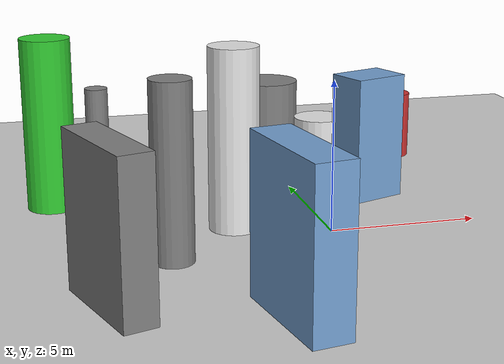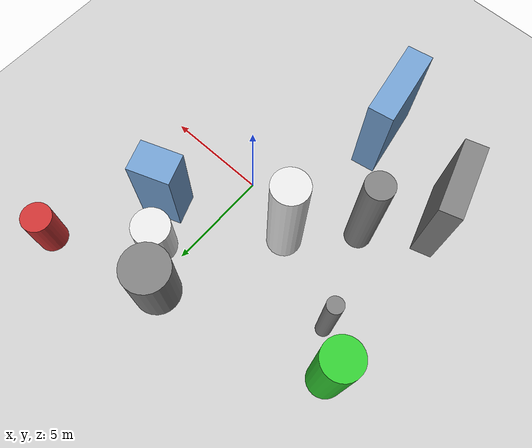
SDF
<?xml version='1.0'?>
<sdf version='1.6'>
  <world name='default'>
    <!-- Sun light -->
    <light name='sun' type='directional'>
      <cast_shadows>1</cast_shadows>
      <pose>0 0 10 0 0 0</pose>
      <diffuse>0.8 0.8 0.8 1</diffuse>
      <specular>0.2 0.2 0.2 1</specular>
      <attenuation>
        <range>1000</range>
        <constant>0.9</constant>
        <linear>0.01</linear>
        <quadratic>0.001</quadratic>
      </attenuation>
      <direction>-0.5 0.1 -0.9</direction>
    </light>

    <!-- Ground plane -->
    <model name='ground_plane'>
      <static>1</static>
      <link name='link'>
        <collision name='collision'>
          <geometry>
            <plane>
              <normal>0 0 1</normal>
              <size>100 100</size>
            </plane>
          </geometry>
          <surface>
            <contact>
              <collide_bitmask>65535</collide_bitmask>
              <ode/>
            </contact>
            <friction>
              <ode>
                <mu>100</mu>
                <mu2>50</mu2>
              </ode>
              <torsional><ode/></torsional>
            </friction>
            <bounce/>
          </surface>
          <max_contacts>10</max_contacts>
        </collision>
        <visual name='visual'>
          <cast_shadows>0</cast_shadows>
          <geometry>
            <plane>
              <normal>0 0 1</normal>
              <size>100 100</size>
            </plane>
          </geometry>
          <material>
            <script>
              <uri>file://media/materials/scripts/gazebo.material</uri>
              <n>Gazebo/Grey</n>
            </script>
          </material>
        </visual>
      </link>
    </model>

    <!-- Environment -->
    <magnetic_field>6e-06 2.3e-05 -4.2e-05</magnetic_field>
    <atmosphere type='adiabatic'/>
    <physics name='default_physics' default='0' type='ode'>
      <gravity>0 0 -9.8</gravity>
      <max_step_size>0.004</max_step_size>
      <real_time_factor>1</real_time_factor>
      <real_time_update_rate>250</real_time_update_rate>
    </physics>
    <scene>
      <ambient>0.4 0.4 0.4 1</ambient>
      <background>0.7 0.7 0.7 1</background>
      <shadows>1</shadows>
    </scene>
    <wind/>
    <spherical_coordinates>
      <surface_model>EARTH_WGS84</surface_model>
      <latitude_deg>0</latitude_deg>
      <longitude_deg>0</longitude_deg>
      <elevation>0</elevation>
      <heading_deg>0</heading_deg>
    </spherical_coordinates>

    <!-- ============ OBSTACLES (10) ============ -->
    <model name='obs_00'>
      <static>1</static>
      <link name='link'>
        <visual name='visual'>
          <geometry>
            <cylinder>
              <radius>1.1314</radius>
              <length>3.6334</length>
            </cylinder>
          </geometry>
          <material>
            <script>
              <n>Gazebo/Grey</n>
              <uri>file://media/materials/scripts/gazebo.material</uri>
            </script>
            <ambient>0.5 0.5 0.5 1</ambient>
          </material>
        </visual>
        <collision name='collision'>
          <geometry>
            <cylinder>
              <radius>1.1314</radius>
              <length>3.6334</length>
            </cylinder>
          </geometry>
          <max_contacts>10</max_contacts>
          <surface>
            <contact><ode/></contact>
            <bounce/>
            <friction>
              <ode><mu>1</mu><mu2>1</mu2></ode>
              <torsional><ode/></torsional>
            </friction>
          </surface>
        </collision>
      </link>
      <pose>-0.3562 6.9455 1.8167 0 0 0.2883</pose>
    </model>

    <model name='obs_01'>
      <static>1</static>
      <link name='link'>
        <visual name='visual'>
          <geometry>
            <cylinder>
              <radius>0.8346</radius>
              <length>6.0512</length>
            </cylinder>
          </geometry>
          <material>
            <script>
              <n>Gazebo/White</n>
              <uri>file://media/materials/scripts/gazebo.material</uri>
            </script>
            <ambient>0.9 0.9 0.9 1</ambient>
          </material>
        </visual>
        <collision name='collision'>
          <geometry>
            <cylinder>
              <radius>0.8346</radius>
              <length>6.0512</length>
            </cylinder>
          </geometry>
          <max_contacts>10</max_contacts>
          <surface>
            <contact><ode/></contact>
            <bounce/>
            <friction>
              <ode><mu>1</mu><mu2>1</mu2></ode>
              <torsional><ode/></torsional>
            </friction>
          </surface>
        </collision>
      </link>
      <pose>-2.9977 1.1253 3.0256 0 0 1.0710</pose>
    </model>

    <model name='obs_02'>
      <static>1</static>
      <link name='link'>
        <visual name='visual'>
          <geometry>
            <box>
              <size>3.5917 1.0445 4.7722</size>
            </box>
          </geometry>
          <material>
            <script>
              <n>Gazebo/Grey</n>
              <uri>file://media/materials/scripts/gazebo.material</uri>
            </script>
            <ambient>0.5 0.5 0.5 1</ambient>
          </material>
        </visual>
        <collision name='collision'>
          <geometry>
            <box>
              <size>3.5917 1.0445 4.7722</size>
            </box>
          </geometry>
          <max_contacts>10</max_contacts>
          <surface>
            <contact><ode/></contact>
            <bounce/>
            <friction>
              <ode><mu>1</mu><mu2>1</mu2></ode>
              <torsional><ode/></torsional>
            </friction>
          </surface>
        </collision>
      </link>
      <pose>-7.7023 -4.4286 2.3861 0 0 1.8731</pose>
    </model>

    <model name='obs_03'>
      <static>1</static>
      <link name='link'>
        <visual name='visual'>
          <geometry>
            <cylinder>
              <radius>0.6534</radius>
              <length>5.6336</length>
            </cylinder>
          </geometry>
          <material>
            <script>
              <n>Gazebo/Grey</n>
              <uri>file://media/materials/scripts/gazebo.material</uri>
            </script>
            <ambient>0.5 0.5 0.5 1</ambient>
          </material>
        </visual>
        <collision name='collision'>
          <geometry>
            <cylinder>
              <radius>0.6534</radius>
              <length>5.6336</length>
            </cylinder>
          </geometry>
          <max_contacts>10</max_contacts>
          <surface>
            <contact><ode/></contact>
            <bounce/>
            <friction>
              <ode><mu>1</mu><mu2>1</mu2></ode>
              <torsional><ode/></torsional>
            </friction>
          </surface>
        </collision>
      </link>
      <pose>-5.4768 -1.4178 2.8168 0 0 2.1173</pose>
    </model>

    <model name='obs_04'>
      <static>1</static>
      <link name='link'>
        <visual name='visual'>
          <geometry>
            <cylinder>
              <radius>0.9162</radius>
              <length>2.5090</length>
            </cylinder>
          </geometry>
          <material>
            <script>
              <n>Gazebo/White</n>
              <uri>file://media/materials/scripts/gazebo.material</uri>
            </script>
            <ambient>0.9 0.9 0.9 1</ambient>
          </material>
        </visual>
        <collision name='collision'>
          <geometry>
            <cylinder>
              <radius>0.9162</radius>
              <length>2.5090</length>
            </cylinder>
          </geometry>
          <max_contacts>10</max_contacts>
          <surface>
            <contact><ode/></contact>
            <bounce/>
            <friction>
              <ode><mu>1</mu><mu2>1</mu2></ode>
              <torsional><ode/></torsional>
            </friction>
          </surface>
        </collision>
      </link>
      <pose>1.2193 5.3487 1.2545 0 0 1.9072</pose>
    </model>

    <model name='obs_05'>
      <static>1</static>
      <link name='link'>
        <visual name='visual'>
          <geometry>
            <box>
              <size>2.0047 1.4914 4.3924</size>
            </box>
          </geometry>
          <material>
            <script>
              <n>Gazebo/Blue</n>
              <uri>file://media/materials/scripts/gazebo.material</uri>
            </script>
            <ambient>0.447 0.624 0.812 1</ambient>
          </material>
        </visual>
        <collision name='collision'>
          <geometry>
            <box>
              <size>2.0047 1.4914 4.3924</size>
            </box>
          </geometry>
          <max_contacts>10</max_contacts>
          <surface>
            <contact><ode/></contact>
            <bounce/>
            <friction>
              <ode><mu>1</mu><mu2>1</mu2></ode>
              <torsional><ode/></torsional>
            </friction>
          </surface>
        </collision>
      </link>
      <pose>2.4345 3.4995 2.1962 0 0 0.3576</pose>
    </model>

    <model name='obs_06'>
      <static>1</static>
      <link name='link'>
        <visual name='visual'>
          <geometry>
            <cylinder>
              <radius>0.7206</radius>
              <length>2.5436</length>
            </cylinder>
          </geometry>
          <material>
            <script>
              <n>Gazebo/Red</n>
              <uri>file://media/materials/scripts/gazebo.material</uri>
            </script>
            <ambient>0.8 0.2 0.2 1</ambient>
          </material>
        </visual>
        <collision name='collision'>
          <geometry>
            <cylinder>
              <radius>0.7206</radius>
              <length>2.5436</length>
            </cylinder>
          </geometry>
          <max_contacts>10</max_contacts>
          <surface>
            <contact><ode/></contact>
            <bounce/>
            <friction>
              <ode><mu>1</mu><mu2>1</mu2></ode>
              <torsional><ode/></torsional>
            </friction>
          </surface>
        </collision>
      </link>
      <pose>5.2482 8.4308 1.2718 0 0 1.6554</pose>
    </model>

    <model name='obs_07'>
      <static>1</static>
      <link name='link'>
        <visual name='visual'>
          <geometry>
            <box>
              <size>1.2155 3.8086 4.8367</size>
            </box>
          </geometry>
          <material>
            <script>
              <n>Gazebo/Blue</n>
              <uri>file://media/materials/scripts/gazebo.material</uri>
            </script>
            <ambient>0.447 0.624 0.812 1</ambient>
          </material>
        </visual>
        <collision name='collision'>
          <geometry>
            <box>
              <size>1.2155 3.8086 4.8367</size>
            </box>
          </geometry>
          <max_contacts>10</max_contacts>
          <surface>
            <contact><ode/></contact>
            <bounce/>
            <friction>
              <ode><mu>1</mu><mu2>1</mu2></ode>
              <torsional><ode/></torsional>
            </friction>
          </surface>
        </collision>
      </link>
      <pose>-2.9795 -6.3719 2.4184 0 0 0.1721</pose>
    </model>

    <model name='obs_08'>
      <static>1</static>
      <link name='link'>
        <visual name='visual'>
          <geometry>
            <cylinder>
              <radius>0.3720</radius>
              <length>4.4817</length>
            </cylinder>
          </geometry>
          <material>
            <script>
              <n>Gazebo/Grey</n>
              <uri>file://media/materials/scripts/gazebo.material</uri>
            </script>
            <ambient>0.5 0.5 0.5 1</ambient>
          </material>
        </visual>
        <collision name='collision'>
          <geometry>
            <cylinder>
              <radius>0.3720</radius>
              <length>4.4817</length>
            </cylinder>
          </geometry>
          <max_contacts>10</max_contacts>
          <surface>
            <contact><ode/></contact>
            <bounce/>
            <friction>
              <ode><mu>1</mu><mu2>1</mu2></ode>
              <torsional><ode/></torsional>
            </friction>
          </surface>
        </collision>
      </link>
      <pose>-7.1350 3.1469 2.2408 0 0 0.9093</pose>
    </model>

    <model name='obs_09'>
      <static>1</static>
      <link name='link'>
        <visual name='visual'>
          <geometry>
            <cylinder>
              <radius>0.8534</radius>
              <length>5.9257</length>
            </cylinder>
          </geometry>
          <material>
            <script>
              <n>Gazebo/Green</n>
              <uri>file://media/materials/scripts/gazebo.material</uri>
            </script>
            <ambient>0.2 0.8 0.2 1</ambient>
          </material>
        </visual>
        <collision name='collision'>
          <geometry>
            <cylinder>
              <radius>0.8534</radius>
              <length>5.9257</length>
            </cylinder>
          </geometry>
          <max_contacts>10</max_contacts>
          <surface>
            <contact><ode/></contact>
            <bounce/>
            <friction>
              <ode><mu>1</mu><mu2>1</mu2></ode>
              <torsional><ode/></torsional>
            </friction>
          </surface>
        </collision>
      </link>
      <pose>-8.6083 4.8194 2.9628 0 0 0.5520</pose>
    </model>

    <!-- GUI camera -->
    <gui fullscreen='0'>
      <camera name='user_camera'>
        <pose>-15 0 18 0 0.85 0.15</pose>
        <view_controller>orbit</view_controller>
        <projection_type>perspective</projection_type>
      </camera>
    </gui>
  </world>
</sdf>
